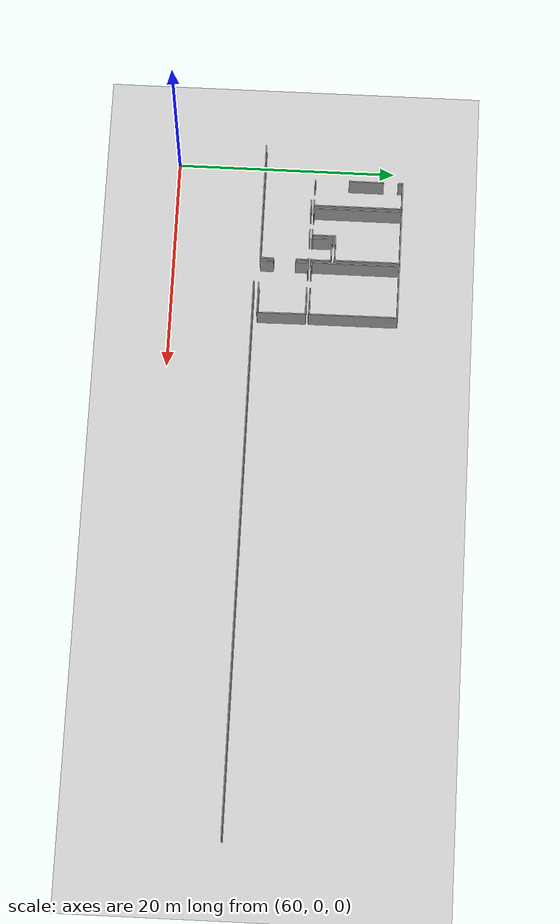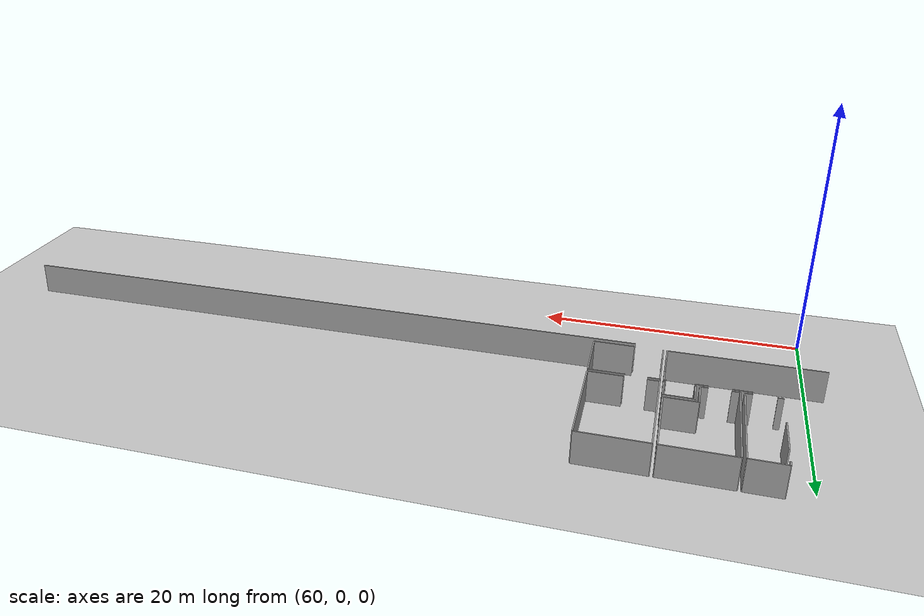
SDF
<sdf version="1.6">
 <world name="default">
  <model name="ground_plane">
   <static>1</static>
   <link name="link">
    <collision name="collision">
     <geometry><plane><normal>0 0 1</normal><size>100 100</size></plane></geometry>
     <surface><friction><ode><mu>100</mu><mu2>50</mu2></ode></friction></surface>
    </collision>
    <visual name="visual">
     <cast_shadows>0</cast_shadows>
     <geometry><plane><normal>0 0 1</normal><size>100 100</size></plane></geometry>
     <material>
      <script><uri>file://media/materials/scripts/gazebo.material</uri><name>Gazebo/Grey</name></script>
     </material>
    </visual>
   </link>
  </model>
  <model name="50037764_PLAN1">
   <static>1</static>
   <link name="Wall_372">
    <collision name="Wall_372_Collision">
     <geometry><box><size>11.2664599115 0.1 2.5</size></box></geometry>
     <pose>5.63322995577 0 1.25 0 0 0</pose>
    </collision>
    <visual name="Wall_372_Visual">
     <pose>5.63322995577 0 1.25 0 0 0</pose>
     <geometry><box><size>11.2664599115 0.1 2.5</size></box></geometry>
     <material>
      <script><uri>file://media/materials/scripts/gazebo.material</uri><name>Gazebo/Grey</name></script>
      <ambient>1 1 1 1</ambient>
     </material>
    </visual>
    <pose>205.027708577 -12.8047943464 0 0 0 3.14159265359</pose>
   </link>
   <link name="Wall_375">
    <collision name="Wall_375_Collision">
     <geometry><box><size>1.3661091057 0.1 2.5</size></box></geometry>
     <pose>0.68305455285 0 1.25 0 0 0</pose>
    </collision>
    <visual name="Wall_375_Visual">
     <pose>0.68305455285 0 1.25 0 0 0</pose>
     <geometry><box><size>1.3661091057 0.1 2.5</size></box></geometry>
     <material>
      <script><uri>file://media/materials/scripts/gazebo.material</uri><name>Gazebo/Grey</name></script>
      <ambient>1 1 1 1</ambient>
     </material>
    </visual>
    <pose>199.039605471 -8.37180334537 0 0 0 0.0</pose>
   </link>
   <link name="Wall_376">
    <collision name="Wall_376_Collision">
     <geometry><box><size>0.902689511414 0.1 2.5</size></box></geometry>
     <pose>0.451344755707 0 1.25 0 0 0</pose>
    </collision>
    <visual name="Wall_376_Visual">
     <pose>0.451344755707 0 1.25 0 0 0</pose>
     <geometry><box><size>0.902689511414 0.1 2.5</size></box></geometry>
     <material>
      <script><uri>file://media/materials/scripts/gazebo.material</uri><name>Gazebo/Grey</name></script>
      <ambient>1 1 1 1</ambient>
     </material>
    </visual>
    <pose>202.028572881 -8.37180334537 0 0 0 0.0</pose>
   </link>
   <link name="Wall_377">
    <collision name="Wall_377_Collision">
     <geometry><box><size>0.151507448269 0.1 2.5</size></box></geometry>
     <pose>0.0757537241344 0 1.25 0 0 0</pose>
    </collision>
    <visual name="Wall_377_Visual">
     <pose>0.0757537241344 0 1.25 0 0 0</pose>
     <geometry><box><size>0.151507448269 0.1 2.5</size></box></geometry>
     <material>
      <script><uri>file://media/materials/scripts/gazebo.material</uri><name>Gazebo/Grey</name></script>
      <ambient>1 1 1 1</ambient>
     </material>
    </visual>
    <pose>204.888148864 -8.37180334537 0 0 0 0.0</pose>
   </link>
   <link name="Wall_378">
    <collision name="Wall_378_Collision">
     <geometry><box><size>1.1722253292 0.1 2.5</size></box></geometry>
     <pose>0.586112664599 0 1.25 0 0 0</pose>
    </collision>
    <visual name="Wall_378_Visual">
     <pose>0.586112664599 0 1.25 0 0 0</pose>
     <geometry><box><size>1.1722253292 0.1 2.5</size></box></geometry>
     <material>
      <script><uri>file://media/materials/scripts/gazebo.material</uri><name>Gazebo/Grey</name></script>
      <ambient>1 1 1 1</ambient>
     </material>
    </visual>
    <pose>205.039656312 -8.37180334537 0 0 0 -1.57079632679</pose>
   </link>
   <link name="Wall_379">
    <collision name="Wall_379_Collision">
     <geometry><box><size>1.26311004399 0.1 2.5</size></box></geometry>
     <pose>0.631555021995 0 1.25 0 0 0</pose>
    </collision>
    <visual name="Wall_379_Visual">
     <pose>0.631555021995 0 1.25 0 0 0</pose>
     <geometry><box><size>1.26311004399 0.1 2.5</size></box></geometry>
     <material>
      <script><uri>file://media/materials/scripts/gazebo.material</uri><name>Gazebo/Grey</name></script>
      <ambient>1 1 1 1</ambient>
     </material>
    </visual>
    <pose>205.039656312 -11.5417408104 0 0 0 -1.58025544973</pose>
   </link>
   <link name="Wall_385">
    <collision name="Wall_385_Collision">
     <geometry><box><size>0.520616198078 0.1 2.5</size></box></geometry>
     <pose>0.260308099039 0 1.25 0 0 0</pose>
    </collision>
    <visual name="Wall_385_Visual">
     <pose>0.260308099039 0 1.25 0 0 0</pose>
     <geometry><box><size>0.520616198078 0.1 2.5</size></box></geometry>
     <material>
      <script><uri>file://media/materials/scripts/gazebo.material</uri><name>Gazebo/Grey</name></script>
      <ambient>1 1 1 1</ambient>
     </material>
    </visual>
    <pose>199.585896589 -8.10267425899 0 0 0 3.14159265359</pose>
   </link>
   <link name="Wall_386">
    <collision name="Wall_386_Collision">
     <geometry><box><size>0.421729625299 0.1 2.5</size></box></geometry>
     <pose>0.210864812649 0 1.25 0 0 0</pose>
    </collision>
    <visual name="Wall_386_Visual">
     <pose>0.210864812649 0 1.25 0 0 0</pose>
     <geometry><box><size>0.421729625299 0.1 2.5</size></box></geometry>
     <material>
      <script><uri>file://media/materials/scripts/gazebo.material</uri><name>Gazebo/Grey</name></script>
      <ambient>1 1 1 1</ambient>
     </material>
    </visual>
    <pose>197.440896843 -8.10267425899 0 0 0 3.14159265359</pose>
   </link>
   <link name="Wall_388">
    <collision name="Wall_388_Collision">
     <geometry><box><size>3.21208500686 0.1 2.5</size></box></geometry>
     <pose>1.60604250343 0 1.25 0 0 0</pose>
    </collision>
    <visual name="Wall_388_Visual">
     <pose>1.60604250343 0 1.25 0 0 0</pose>
     <geometry><box><size>3.21208500686 0.1 2.5</size></box></geometry>
     <material>
      <script><uri>file://media/materials/scripts/gazebo.material</uri><name>Gazebo/Grey</name></script>
      <ambient>1 1 1 1</ambient>
     </material>
    </visual>
    <pose>197.019167217 -4.98528140729 0 0 0 1.57079632679</pose>
   </link>
   <link name="Wall_389">
    <collision name="Wall_389_Collision">
     <geometry><box><size>0.442091616249 0.1 2.5</size></box></geometry>
     <pose>0.221045808124 0 1.25 0 0 0</pose>
    </collision>
    <visual name="Wall_389_Visual">
     <pose>0.221045808124 0 1.25 0 0 0</pose>
     <geometry><box><size>0.442091616249 0.1 2.5</size></box></geometry>
     <material>
      <script><uri>file://media/materials/scripts/gazebo.material</uri><name>Gazebo/Grey</name></script>
      <ambient>1 1 1 1</ambient>
     </material>
    </visual>
    <pose>197.019167217 -0.445803040317 0 0 0 1.57079632679</pose>
   </link>
   <link name="Wall_390">
    <collision name="Wall_390_Collision">
     <geometry><box><size>2.57257613503 0.1 2.5</size></box></geometry>
     <pose>1.28628806752 0 1.25 0 0 0</pose>
    </collision>
    <visual name="Wall_390_Visual">
     <pose>1.28628806752 0 1.25 0 0 0</pose>
     <geometry><box><size>2.57257613503 0.1 2.5</size></box></geometry>
     <material>
      <script><uri>file://media/materials/scripts/gazebo.material</uri><name>Gazebo/Grey</name></script>
      <ambient>1 1 1 1</ambient>
     </material>
    </visual>
    <pose>197.019167217 -0.00371142406833 0 0 0 0.0</pose>
   </link>
   <link name="Wall_391">
    <collision name="Wall_391_Collision">
     <geometry><box><size>8.09896494535 0.1 2.5</size></box></geometry>
     <pose>4.04948247268 0 1.25 0 0 0</pose>
    </collision>
    <visual name="Wall_391_Visual">
     <pose>4.04948247268 0 1.25 0 0 0</pose>
     <geometry><box><size>8.09896494535 0.1 2.5</size></box></geometry>
     <material>
      <script><uri>file://media/materials/scripts/gazebo.material</uri><name>Gazebo/Grey</name></script>
      <ambient>1 1 1 1</ambient>
     </material>
    </visual>
    <pose>199.591743352 -0.00371142406833 0 0 0 -1.57151824182</pose>
   </link>
   <link name="Wall_402">
    <collision name="Wall_402_Collision">
     <geometry><box><size>0.538919111292 0.1 2.5</size></box></geometry>
     <pose>0.269459555646 0 1.25 0 0 0</pose>
    </collision>
    <visual name="Wall_402_Visual">
     <pose>0.269459555646 0 1.25 0 0 0</pose>
     <geometry><box><size>0.538919111292 0.1 2.5</size></box></geometry>
     <material>
      <script><uri>file://media/materials/scripts/gazebo.material</uri><name>Gazebo/Grey</name></script>
      <ambient>1 1 1 1</ambient>
     </material>
    </visual>
    <pose>202.562662057 -8.11586760893 0 0 0 3.14159265359</pose>
   </link>
   <link name="Wall_403">
    <collision name="Wall_403_Collision">
     <geometry><box><size>0.581371701662 0.1 2.5</size></box></geometry>
     <pose>0.290685850831 0 1.25 0 0 0</pose>
    </collision>
    <visual name="Wall_403_Visual">
     <pose>0.290685850831 0 1.25 0 0 0</pose>
     <geometry><box><size>0.581371701662 0.1 2.5</size></box></geometry>
     <material>
      <script><uri>file://media/materials/scripts/gazebo.material</uri><name>Gazebo/Grey</name></script>
      <ambient>1 1 1 1</ambient>
     </material>
    </visual>
    <pose>200.464436423 -8.11586760893 0 0 0 3.14159265359</pose>
   </link>
   <link name="Wall_404">
    <collision name="Wall_404_Collision">
     <geometry><box><size>8.11586760893 0.1 2.5</size></box></geometry>
     <pose>4.05793380446 0 1.25 0 0 0</pose>
    </collision>
    <visual name="Wall_404_Visual">
     <pose>4.05793380446 0 1.25 0 0 0</pose>
     <geometry><box><size>8.11586760893 0.1 2.5</size></box></geometry>
     <material>
      <script><uri>file://media/materials/scripts/gazebo.material</uri><name>Gazebo/Grey</name></script>
      <ambient>1 1 1 1</ambient>
     </material>
    </visual>
    <pose>199.883064721 -8.11586760893 0 0 0 1.57079632679</pose>
   </link>
   <link name="Wall_405">
    <collision name="Wall_405_Collision">
     <geometry><box><size>5.11566424323 0.1 2.5</size></box></geometry>
     <pose>2.55783212161 0 1.25 0 0 0</pose>
    </collision>
    <visual name="Wall_405_Visual">
     <pose>2.55783212161 0 1.25 0 0 0</pose>
     <geometry><box><size>5.11566424323 0.1 2.5</size></box></geometry>
     <material>
      <script><uri>file://media/materials/scripts/gazebo.material</uri><name>Gazebo/Grey</name></script>
      <ambient>1 1 1 1</ambient>
     </material>
    </visual>
    <pose>199.883064721 -0.0 0 0 0 0.0</pose>
   </link>
   <link name="Wall_406">
    <collision name="Wall_406_Collision">
     <geometry><box><size>5.98815394784 0.1 2.5</size></box></geometry>
     <pose>2.99407697392 0 1.25 0 0 0</pose>
    </collision>
    <visual name="Wall_406_Visual">
     <pose>2.99407697392 0 1.25 0 0 0</pose>
     <geometry><box><size>5.98815394784 0.1 2.5</size></box></geometry>
     <material>
      <script><uri>file://media/materials/scripts/gazebo.material</uri><name>Gazebo/Grey</name></script>
      <ambient>1 1 1 1</ambient>
     </material>
    </visual>
    <pose>204.998728964 -0.0 0 0 0 -1.57079632679</pose>
   </link>
   <link name="Wall_407">
    <collision name="Wall_407_Collision">
     <geometry><box><size>2.43454166455 0.1 2.5</size></box></geometry>
     <pose>1.21727083227 0 1.25 0 0 0</pose>
    </collision>
    <visual name="Wall_407_Visual">
     <pose>1.21727083227 0 1.25 0 0 0</pose>
     <geometry><box><size>2.43454166455 0.1 2.5</size></box></geometry>
     <material>
      <script><uri>file://media/materials/scripts/gazebo.material</uri><name>Gazebo/Grey</name></script>
      <ambient>1 1 1 1</ambient>
     </material>
    </visual>
    <pose>204.998728964 -5.98815394784 0 0 0 3.14159265359</pose>
   </link>
   <link name="Wall_408">
    <collision name="Wall_408_Collision">
     <geometry><box><size>2.12771420777 0.1 2.5</size></box></geometry>
     <pose>1.06385710389 0 1.25 0 0 0</pose>
    </collision>
    <visual name="Wall_408_Visual">
     <pose>1.06385710389 0 1.25 0 0 0</pose>
     <geometry><box><size>2.12771420777 0.1 2.5</size></box></geometry>
     <material>
      <script><uri>file://media/materials/scripts/gazebo.material</uri><name>Gazebo/Grey</name></script>
      <ambient>1 1 1 1</ambient>
     </material>
    </visual>
    <pose>202.5641873 -5.98815394784 0 0 0 -1.57151317255</pose>
   </link>
   <link name="Wall_409">
    <collision name="Wall_409_Collision">
     <geometry><box><size>0.132950327927 0.1 2.5</size></box></geometry>
     <pose>0.0664751639636 0 1.25 0 0 0</pose>
    </collision>
    <visual name="Wall_409_Visual">
     <pose>0.0664751639636 0 1.25 0 0 0</pose>
     <geometry><box><size>0.132950327927 0.1 2.5</size></box></geometry>
     <material>
      <script><uri>file://media/materials/scripts/gazebo.material</uri><name>Gazebo/Grey</name></script>
      <ambient>1 1 1 1</ambient>
     </material>
    </visual>
    <pose>205.040164726 -8.12995068382 0 0 0 3.14159265359</pose>
   </link>
   <link name="Wall_410">
    <collision name="Wall_410_Collision">
     <geometry><box><size>0.0884640805328 0.1 2.5</size></box></geometry>
     <pose>0.0442320402664 0 1.25 0 0 0</pose>
    </collision>
    <visual name="Wall_410_Visual">
     <pose>0.0442320402664 0 1.25 0 0 0</pose>
     <geometry><box><size>0.0884640805328 0.1 2.5</size></box></geometry>
     <material>
      <script><uri>file://media/materials/scripts/gazebo.material</uri><name>Gazebo/Grey</name></script>
      <ambient>1 1 1 1</ambient>
     </material>
    </visual>
    <pose>202.954395241 -8.12995068382 0 0 0 3.14159265359</pose>
   </link>
   <link name="Wall_411">
    <collision name="Wall_411_Collision">
     <geometry><box><size>1.80875997763 0.1 2.5</size></box></geometry>
     <pose>0.904379988815 0 1.25 0 0 0</pose>
    </collision>
    <visual name="Wall_411_Visual">
     <pose>0.904379988815 0 1.25 0 0 0</pose>
     <geometry><box><size>1.80875997763 0.1 2.5</size></box></geometry>
     <material>
      <script><uri>file://media/materials/scripts/gazebo.material</uri><name>Gazebo/Grey</name></script>
      <ambient>1 1 1 1</ambient>
     </material>
    </visual>
    <pose>202.865931161 -8.12995068382 0 0 0 1.57079632679</pose>
   </link>
   <link name="Wall_412">
    <collision name="Wall_412_Collision">
     <geometry><box><size>2.17372515125 0.1 2.5</size></box></geometry>
     <pose>1.08686257563 0 1.25 0 0 0</pose>
    </collision>
    <visual name="Wall_412_Visual">
     <pose>1.08686257563 0 1.25 0 0 0</pose>
     <geometry><box><size>2.17372515125 0.1 2.5</size></box></geometry>
     <material>
      <script><uri>file://media/materials/scripts/gazebo.material</uri><name>Gazebo/Grey</name></script>
      <ambient>1 1 1 1</ambient>
     </material>
    </visual>
    <pose>202.865931161 -6.32119070619 0 0 0 0.0</pose>
   </link>
   <link name="Wall_413">
    <collision name="Wall_413_Collision">
     <geometry><box><size>1.80876004908 0.1 2.5</size></box></geometry>
     <pose>0.904380024542 0 1.25 0 0 0</pose>
    </collision>
    <visual name="Wall_413_Visual">
     <pose>0.904380024542 0 1.25 0 0 0</pose>
     <geometry><box><size>1.80876004908 0.1 2.5</size></box></geometry>
     <material>
      <script><uri>file://media/materials/scripts/gazebo.material</uri><name>Gazebo/Grey</name></script>
      <ambient>1 1 1 1</ambient>
     </material>
    </visual>
    <pose>205.039656312 -6.32119070619 0 0 0 -1.57051524238</pose>
   </link>
   <link name="Wall_414">
    <collision name="Wall_414_Collision">
     <geometry><box><size>2.99811886725 0.1 2.5</size></box></geometry>
     <pose>1.49905943363 0 1.25 0 0 0</pose>
    </collision>
    <visual name="Wall_414_Visual">
     <pose>1.49905943363 0 1.25 0 0 0</pose>
     <geometry><box><size>2.99811886725 0.1 2.5</size></box></geometry>
     <material>
      <script><uri>file://media/materials/scripts/gazebo.material</uri><name>Gazebo/Grey</name></script>
      <ambient>1 1 1 1</ambient>
     </material>
    </visual>
    <pose>210.439269917 -12.8053790228 0 0 0 3.14159265359</pose>
   </link>
   <link name="Wall_415">
    <collision name="Wall_415_Collision">
     <geometry><box><size>1.22652397173 0.1 2.5</size></box></geometry>
     <pose>0.613261985866 0 1.25 0 0 0</pose>
    </collision>
    <visual name="Wall_415_Visual">
     <pose>0.613261985866 0 1.25 0 0 0</pose>
     <geometry><box><size>1.22652397173 0.1 2.5</size></box></geometry>
     <material>
      <script><uri>file://media/materials/scripts/gazebo.material</uri><name>Gazebo/Grey</name></script>
      <ambient>1 1 1 1</ambient>
     </material>
    </visual>
    <pose>205.31775891 -12.8053790228 0 0 0 1.57079632679</pose>
   </link>
   <link name="Wall_416">
    <collision name="Wall_416_Collision">
     <geometry><box><size>1.16274340333 0.1 2.5</size></box></geometry>
     <pose>0.581371701663 0 1.25 0 0 0</pose>
    </collision>
    <visual name="Wall_416_Visual">
     <pose>0.581371701663 0 1.25 0 0 0</pose>
     <geometry><box><size>1.16274340333 0.1 2.5</size></box></geometry>
     <material>
      <script><uri>file://media/materials/scripts/gazebo.material</uri><name>Gazebo/Grey</name></script>
      <ambient>1 1 1 1</ambient>
     </material>
    </visual>
    <pose>205.31775891 -9.55666276882 0 0 0 1.57079632679</pose>
   </link>
   <link name="Wall_417">
    <collision name="Wall_417_Collision">
     <geometry><box><size>0.859474299659 0.1 2.5</size></box></geometry>
     <pose>0.42973714983 0 1.25 0 0 0</pose>
    </collision>
    <visual name="Wall_417_Visual">
     <pose>0.42973714983 0 1.25 0 0 0</pose>
     <geometry><box><size>0.859474299659 0.1 2.5</size></box></geometry>
     <material>
      <script><uri>file://media/materials/scripts/gazebo.material</uri><name>Gazebo/Grey</name></script>
      <ambient>1 1 1 1</ambient>
     </material>
    </visual>
    <pose>205.31775891 -8.3939193655 0 0 0 0.0</pose>
   </link>
   <link name="Wall_418">
    <collision name="Wall_418_Collision">
     <geometry><box><size>2.61629976105 0.1 2.5</size></box></geometry>
     <pose>1.30814988052 0 1.25 0 0 0</pose>
    </collision>
    <visual name="Wall_418_Visual">
     <pose>1.30814988052 0 1.25 0 0 0</pose>
     <geometry><box><size>2.61629976105 0.1 2.5</size></box></geometry>
     <material>
      <script><uri>file://media/materials/scripts/gazebo.material</uri><name>Gazebo/Grey</name></script>
      <ambient>1 1 1 1</ambient>
     </material>
    </visual>
    <pose>207.774670802 -8.3939193655 0 0 0 0.0</pose>
   </link>
   <link name="Wall_419">
    <collision name="Wall_419_Collision">
     <geometry><box><size>4.41172405482 0.1 2.5</size></box></geometry>
     <pose>2.20586202741 0 1.25 0 0 0</pose>
    </collision>
    <visual name="Wall_419_Visual">
     <pose>2.20586202741 0 1.25 0 0 0</pose>
     <geometry><box><size>4.41172405482 0.1 2.5</size></box></geometry>
     <material>
      <script><uri>file://media/materials/scripts/gazebo.material</uri><name>Gazebo/Grey</name></script>
      <ambient>1 1 1 1</ambient>
     </material>
    </visual>
    <pose>210.390970563 -8.3939193655 0 0 0 -1.55984815356</pose>
   </link>
   <link name="Wall_420">
    <collision name="Wall_420_Collision">
     <geometry><box><size>2.56850882099 0.1 2.5</size></box></geometry>
     <pose>1.28425441049 0 1.25 0 0 0</pose>
    </collision>
    <visual name="Wall_420_Visual">
     <pose>1.28425441049 0 1.25 0 0 0</pose>
     <geometry><box><size>2.56850882099 0.1 2.5</size></box></geometry>
     <material>
      <script><uri>file://media/materials/scripts/gazebo.material</uri><name>Gazebo/Grey</name></script>
      <ambient>1 1 1 1</ambient>
     </material>
    </visual>
    <pose>210.392241598 -8.08912501907 0 0 0 3.14159265359</pose>
   </link>
   <link name="Wall_421">
    <collision name="Wall_421_Collision">
     <geometry><box><size>0.872184656058 0.1 2.5</size></box></geometry>
     <pose>0.436092328029 0 1.25 0 0 0</pose>
    </collision>
    <visual name="Wall_421_Visual">
     <pose>0.436092328029 0 1.25 0 0 0</pose>
     <geometry><box><size>0.872184656058 0.1 2.5</size></box></geometry>
     <material>
      <script><uri>file://media/materials/scripts/gazebo.material</uri><name>Gazebo/Grey</name></script>
      <ambient>1 1 1 1</ambient>
     </material>
    </visual>
    <pose>206.175962174 -8.08912501907 0 0 0 3.14159265359</pose>
   </link>
   <link name="Wall_422">
    <collision name="Wall_422_Collision">
     <geometry><box><size>8.08721846561 0.1 2.5</size></box></geometry>
     <pose>4.0436092328 0 1.25 0 0 0</pose>
    </collision>
    <visual name="Wall_422_Visual">
     <pose>4.0436092328 0 1.25 0 0 0</pose>
     <geometry><box><size>8.08721846561 0.1 2.5</size></box></geometry>
     <material>
      <script><uri>file://media/materials/scripts/gazebo.material</uri><name>Gazebo/Grey</name></script>
      <ambient>1 1 1 1</ambient>
     </material>
    </visual>
    <pose>205.303777518 -8.08912501907 0 0 0 1.57079632679</pose>
   </link>
   <link name="Wall_423">
    <collision name="Wall_423_Collision">
     <geometry><box><size>5.06939854594 0.1 2.5</size></box></geometry>
     <pose>2.53469927297 0 1.25 0 0 0</pose>
    </collision>
    <visual name="Wall_423_Visual">
     <pose>2.53469927297 0 1.25 0 0 0</pose>
     <geometry><box><size>5.06939854594 0.1 2.5</size></box></geometry>
     <material>
      <script><uri>file://media/materials/scripts/gazebo.material</uri><name>Gazebo/Grey</name></script>
      <ambient>1 1 1 1</ambient>
     </material>
    </visual>
    <pose>205.303777518 -0.00190655345976 0 0 0 0.0</pose>
   </link>
   <link name="Wall_424">
    <collision name="Wall_424_Collision">
     <geometry><box><size>8.08724093898 0.1 2.5</size></box></geometry>
     <pose>4.04362046949 0 1.25 0 0 0</pose>
    </collision>
    <visual name="Wall_424_Visual">
     <pose>4.04362046949 0 1.25 0 0 0</pose>
     <geometry><box><size>8.08724093898 0.1 2.5</size></box></geometry>
     <material>
      <script><uri>file://media/materials/scripts/gazebo.material</uri><name>Gazebo/Grey</name></script>
      <ambient>1 1 1 1</ambient>
     </material>
    </visual>
    <pose>210.373176064 -0.00190655345976 0 0 0 -1.56843884142</pose>
   </link>
   <link name="Wall_428">
    <collision name="Wall_428_Collision">
     <geometry><box><size>51.614977884 0.1 2.5</size></box></geometry>
     <pose>25.807488942 0 1.25 0 0 0</pose>
    </collision>
    <visual name="Wall_428_Visual">
     <pose>25.807488942 0 1.25 0 0 0</pose>
     <geometry><box><size>51.614977884 0.1 2.5</size></box></geometry>
     <material>
      <script><uri>file://media/materials/scripts/gazebo.material</uri><name>Gazebo/Grey</name></script>
      <ambient>1 1 1 1</ambient>
     </material>
    </visual>
    <pose>207.377853475 -13.2695612385 0 0 0 0.0</pose>
   </link>
   <pose>-135.1 20.8410341146 0 0 0 0</pose>
  </model>
 </world>
</sdf>
